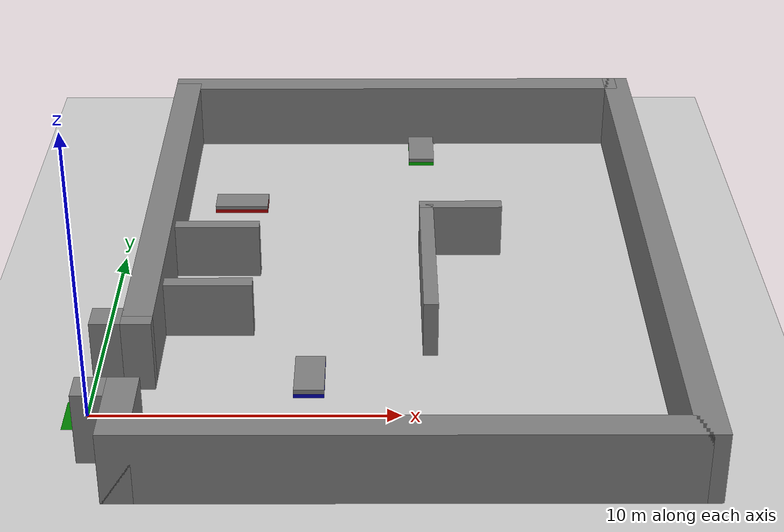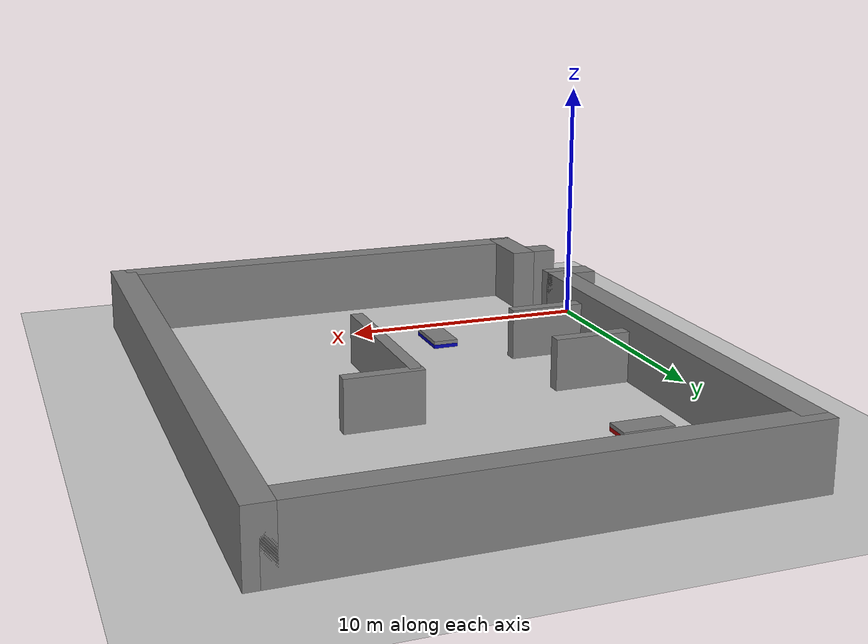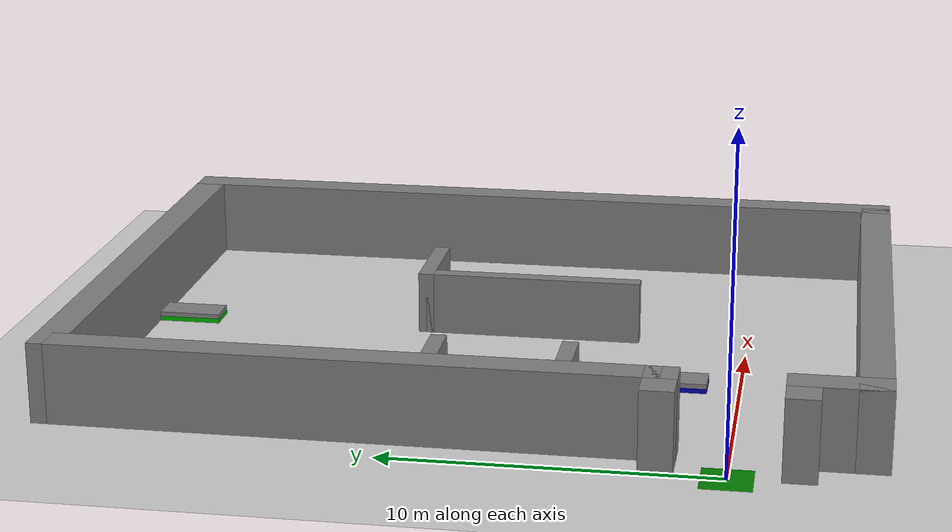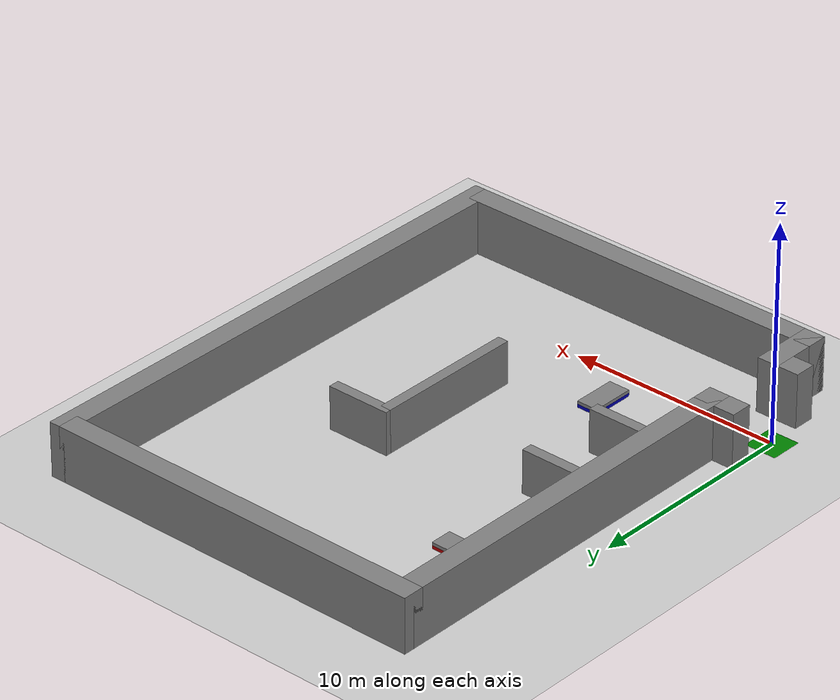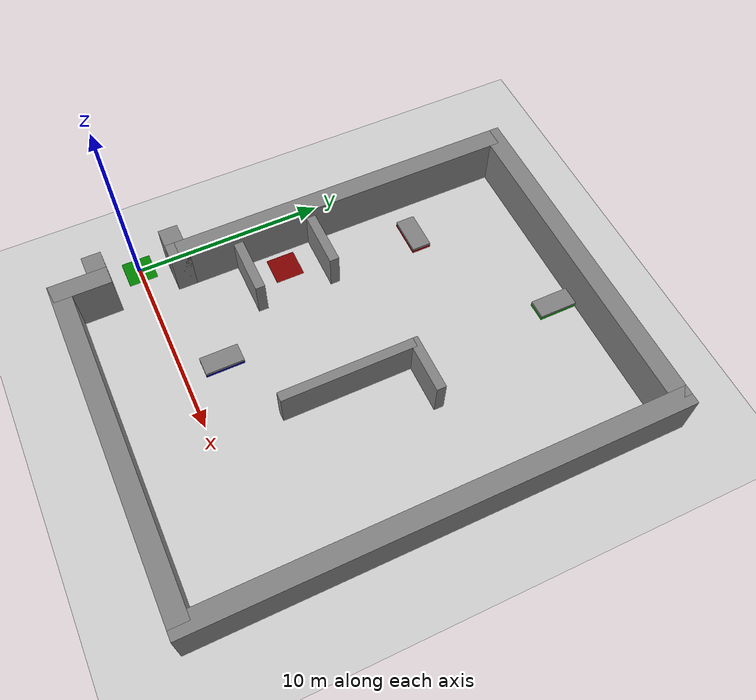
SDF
<sdf version='1.10'>
  <world name='empty'>
    <physics name='1ms' type='ignored'>
      <max_step_size>0.001</max_step_size>
      <real_time_factor>1</real_time_factor>
      <real_time_update_rate>1000</real_time_update_rate>
    </physics>
    <plugin name='gz::sim::systems::Physics' filename='gz-sim-physics-system'/>
    <plugin name='gz::sim::systems::UserCommands' filename='gz-sim-user-commands-system'/>
    <plugin name='gz::sim::systems::SceneBroadcaster' filename='gz-sim-scene-broadcaster-system'/>
    <plugin name='gz::sim::systems::Contact' filename='gz-sim-contact-system'/>
    <gravity>0 0 -9.8000000000000007</gravity>
    <magnetic_field>5.5644999999999998e-06 2.2875799999999999e-05 -4.2388400000000002e-05</magnetic_field>
    <atmosphere type='adiabatic'/>
    <scene>
      <ambient>0.400000006 0.400000006 0.400000006 1</ambient>
      <background>0.699999988 0.699999988 0.699999988 1</background>
      <shadows>false</shadows>
    </scene>
    <model name='ground_plane'>
      <static>true</static>
      <link name='link'>
        <collision name='collision'>
          <geometry>
            <plane>
              <normal>0 0 1</normal>
              <size>70 70</size>
            </plane>
          </geometry>
          <surface>
            <friction>
              <ode/>
            </friction>
            <bounce/>
            <contact/>
          </surface>
        </collision>
        <visual name='visual'>
          <geometry>
            <plane>
              <normal>0 0 1</normal>
              <size>70 70</size>
            </plane>
          </geometry>
          <material>
            <ambient>0.800000012 0.800000012 0.800000012 1</ambient>
            <diffuse>0.800000012 0.800000012 0.800000012 1</diffuse>
            <specular>0.800000012 0.800000012 0.800000012 1</specular>
          </material>
        </visual>
        <pose>0 0 0 0 0 0</pose>
        <inertial>
          <pose>0 0 0 0 0 0</pose>
          <mass>1</mass>
          <inertia>
            <ixx>1</ixx>
            <ixy>0</ixy>
            <ixz>0</ixz>
            <iyy>1</iyy>
            <iyz>0</iyz>
            <izz>1</izz>
          </inertia>
        </inertial>
        <enable_wind>false</enable_wind>
      </link>
      <pose>0 0 0 0 0 0</pose>
      <self_collide>false</self_collide>
    </model>
    <light name='sun' type='directional'>
      <pose>0 0 10 0 0 0</pose>
      <cast_shadows>false</cast_shadows>
      <intensity>1</intensity>
      <direction>-0.5 0.10000000000000001 -0.90000000000000002</direction>
      <diffuse>0.800000012 0.800000012 0.800000012 1</diffuse>
      <specular>0.200000003 0.200000003 0.200000003 1</specular>
      <attenuation>
        <range>1000</range>
        <linear>0.01</linear>
        <constant>0.90000000000000002</constant>
        <quadratic>0.001</quadratic>
      </attenuation>
      <spot>
        <inner_angle>0</inner_angle>
        <outer_angle>0</outer_angle>
        <falloff>0</falloff>
      </spot>
    </light>

    <model name='pick_table_top'>
      <static>true</static>
      <pose>7 2 0.225 0 0 0</pose> <link name='link'>
        <collision name='collision'>
          <geometry>
            <box>
              <size>1 2 0.15</size>
            </box>
          </geometry>
        </collision>
        <visual name='visual'>
          <geometry>
            <box>
              <size>1 2 0.15</size>
            </box>
          </geometry>
          <material>
            <ambient>0.8 0.0 0.0 1.0</ambient>

            <diffuse>0.5 0.5 0.5 1.0</diffuse>

            <specular>0.5 0.5 0.5 1.0</specular>
          </material>
        </visual>
      </link>
    </model>

    <model name='start_point'>
      <static>true</static>
      <pose>0 0 0.001 0 0 0</pose> <link name='link'>
        <visual name='visual'>
          <geometry>
            <box>
              <size>1.5 1.5 0</size>
            </box>
          </geometry>
          <material>
            <ambient>0.8 0.0 0.0 1.0</ambient>

            <diffuse>0.0 0.5 0.0 1.0</diffuse>

            <specular>0.5 0.5 0.5 1.0</specular>
          </material>
        </visual>
      </link>
    </model>

    <model name='finish_point'>
      <static>true</static>
      <pose>3 7 0.001 0 0 0</pose> <link name='link'>
        <visual name='visual'>
          <geometry>
            <box>
              <size>1.5 1.5 0</size>
            </box>
          </geometry>
          <material>
            <ambient>0.8 0.0 0.0 1.0</ambient>

            <diffuse>0.5 0.0 0.0 1.0</diffuse>

            <specular>0.5 0.5 0.5 1.0</specular>
          </material>
        </visual>
      </link>
    </model>

    <model name='pick_table_bot'>
      <static>true</static>
      <pose>7 2 0.075 0 0 0</pose> <link name='link'>
        <collision name='collision'>
          <geometry>
            <box>
              <size>1 2 0.15</size>
            </box>
          </geometry>
        </collision>
        <visual name='visual'>
          <geometry>
            <box>
              <size>1 2 0.15</size>
            </box>
          </geometry>
          <material>
            <ambient>0.8 0.0 0.0 1.0</ambient>

            <diffuse>0.0 0.0 0.7 1.0</diffuse>

            <specular>0.5 0.5 0.5 1.0</specular>
          </material>
        </visual>
      </link>
    </model>

    <model name='place_table_top'>
      <static>true</static>
      <pose>4 14 0.225 0 0 1.57</pose> <link name='link'>
        <collision name='collision'>
          <geometry>
            <box>
              <size>1 2 0.15</size>
            </box>
          </geometry>
        </collision>
        <visual name='visual'>
          <geometry>
            <box>
              <size>1 2 0.15</size>
            </box>
          </geometry>
          <material>
            <ambient>0.8 0.0 0.0 1.0</ambient>

            <diffuse>0.5 0.5 0.5 1.0</diffuse>

            <specular>0.5 0.5 0.5 1.0</specular>
          </material>
        </visual>
      </link>
    </model>

    <model name='place_table_bot'>
      <static>true</static>
      <pose>4 14 0.075 0 0 1.57</pose> <link name='link'>
        <collision name='collision'>
          <geometry>
            <box>
              <size>1 2 0.15</size>
            </box>
          </geometry>
        </collision>
        <visual name='visual'>
          <geometry>
            <box>
              <size>1 2 0.15</size>
            </box>
          </geometry>
          <material>
            <ambient>0.8 0.0 0.0 1.0</ambient>

            <diffuse>0.7 0.0 0.0 1.0</diffuse>

            <specular>0.5 0.5 0.5 1.0</specular>
          </material>
        </visual>
      </link>
    </model>

    <model name='precision_table_top'>
      <static>true</static>
      <pose>11 18.5 0.225 0 0 0</pose> <link name='link'>
        <collision name='collision'>
          <geometry>
            <box>
              <size>1 2 0.15</size>
            </box>
          </geometry>
        </collision>
        <visual name='visual'>
          <geometry>
            <box>
              <size>1 2 0.15</size>
            </box>
          </geometry>
          <material>
            <ambient>0.8 0.0 0.0 1.0</ambient>

            <diffuse>0.5 0.5 0.5 1.0</diffuse>

            <specular>0.5 0.5 0.5 1.0</specular>
          </material>
        </visual>
      </link>
    </model>

    <model name='precision_table_bot'>
      <static>true</static>
      <pose>11 18.5 0.075 0 0 0</pose> <link name='link'>
        <collision name='collision'>
          <geometry>
            <box>
              <size>1 2 0.15</size>
            </box>
          </geometry>
        </collision>
        <visual name='visual'>
          <geometry>
            <box>
              <size>1 2 0.15</size>
            </box>
          </geometry>
          <material>
            <ambient>0.8 0.0 0.0 1.0</ambient>

            <diffuse>0.0 0.7 0.0 1.0</diffuse>

            <specular>0.5 0.5 0.5 1.0</specular>
          </material>
        </visual>
      </link>
    </model>

    <model name='wall_1'>
      <static>true</static>
      <pose>19 8 1.25 0 0 0</pose> <link name='link'>
        <collision name='collision'>
          <geometry>
            <box>
              <size>1 25 2.5</size>
            </box>
          </geometry>
        </collision>
        <visual name='visual'>
          <geometry>
            <box>
              <size>1 25 2.5</size>
            </box>
          </geometry>
          <material>
            <ambient>0.8 0.0 0.0 1.0</ambient>

            <diffuse>0.5 0.5 0.5 1.0</diffuse>

            <specular>0.5 0.5 0.5 1.0</specular>
          </material>
        </visual>
      </link>
    </model>

    <model name='wall_2'>
      <static>true</static>
      <pose>1.5 11 1.25 0 0 0</pose> <link name='link'>
        <collision name='collision'>
          <geometry>
            <box>
              <size>2 18 2.5</size>
            </box>
          </geometry>
        </collision>
        <visual name='visual'>
          <geometry>
            <box>
              <size>1 18 2.5</size>
            </box>
          </geometry>
          <material>
            <ambient>0.8 0.0 0.0 1.0</ambient>

            <diffuse>0.5 0.5 0.5 1.0</diffuse>

            <specular>0.5 0.5 0.5 1.0</specular>
          </material>
        </visual>
      </link>
    </model>

    <model name='wall_3'>
      <static>true</static>
      <pose>10 -4 1.25 0 0 0</pose> <link name='link'>
        <collision name='collision'>
          <geometry>
            <box>
              <size>18 1 2.5</size>
            </box>
          </geometry>
        </collision>
        <visual name='visual'>
          <geometry>
            <box>
              <size>18 1 2.5</size>
            </box>
          </geometry>
          <material>
            <ambient>0.8 0.0 0.0 1.0</ambient>

            <diffuse>0.5 0.5 0.5 1.0</diffuse>

            <specular>0.5 0.5 0.5 1.0</specular>
          </material>
        </visual>
      </link>
    </model>

    <model name='wall_4'>
      <static>true</static>
      <pose>10 20 1.25 0 0 0</pose> <link name='link'>
        <collision name='collision'>
          <geometry>
            <box>
              <size>18 1 2.5</size>
            </box>
          </geometry>
        </collision>
        <visual name='visual'>
          <geometry>
            <box>
              <size>18 1 2.5</size>
            </box>
          </geometry>
          <material>
            <ambient>0.8 0.0 0.0 1.0</ambient>

            <diffuse>0.5 0.5 0.5 1.0</diffuse>

            <specular>0.5 0.5 0.5 1.0</specular>
          </material>
        </visual>
      </link>
    </model>

    <model name='wall_5'>
      <static>true</static>
      <pose>1.5 -3 1.25 0 0 0</pose> <link name='link'>
        <collision name='collision'>
          <geometry>
            <box>
              <size>1 3 2.5</size>
            </box>
          </geometry>
        </collision>
        <visual name='visual'>
          <geometry>
            <box>
              <size>1 3 2.5</size>
            </box>
          </geometry>
          <material>
            <ambient>0.8 0.0 0.0 1.0</ambient>

            <diffuse>0.5 0.5 0.5 1.0</diffuse>

            <specular>0.5 0.5 0.5 1.0</specular>
          </material>
        </visual>
      </link>
    </model>

    <model name='wall_6'>
      <static>true</static>
      <pose>1.5 2 1.25 0 0 0</pose> <link name='link'>
        <collision name='collision'>
          <geometry>
            <box>
              <size>1 1 2.5</size>
            </box>
          </geometry>
        </collision>
        <visual name='visual'>
          <geometry>
            <box>
              <size>1 1 2.5</size>
            </box>
          </geometry>
          <material>
            <ambient>0.8 0.0 0.0 1.0</ambient>

            <diffuse>0.5 0.5 0.5 1.0</diffuse>

            <specular>0.5 0.5 0.5 1.0</specular>
          </material>
        </visual>
      </link>
    </model>

    <model name='gate_1'>
      <static>true</static>
      <pose>0.5 2 1.25 0 0 0</pose> <link name='link'>
        <collision name='collision'>
          <geometry>
            <box>
              <size>2 1 2.5</size>
            </box>
          </geometry>
        </collision>
        <visual name='visual'>
          <geometry>
            <box>
              <size>1 1 2.5</size>
            </box>
          </geometry>
          <material>
            <ambient>0.8 0.0 0.0 1.0</ambient>

            <diffuse>0.5 0.5 0.5 1.0</diffuse>

            <specular>0.5 0.5 0.5 1.0</specular>
          </material>
        </visual>
      </link>
    </model>

    <model name='gate_2'>
      <static>true</static>
      <pose>0.5 -2 1.25 0 0 0</pose> <link name='link'>
        <collision name='collision'>
          <geometry>
            <box>
              <size>2 1 2.5</size>
            </box>
          </geometry>
        </collision>
        <visual name='visual'>
          <geometry>
            <box>
              <size>1 1 2.5</size>
            </box>
          </geometry>
          <material>
            <ambient>0.8 0.0 0.0 1.0</ambient>

            <diffuse>0.5 0.5 0.5 1.0</diffuse>

            <specular>0.5 0.5 0.5 1.0</specular>
          </material>
        </visual>
      </link>
    </model>

    <model name='obstacle_1'>
      <static>true</static>
      <pose>3.5 5 1 0 0 0</pose> <link name='link'>
        <collision name='collision'>
          <geometry>
            <box>
              <size>3 0.5 2</size>
            </box>
          </geometry>
        </collision>
        <visual name='visual'>
          <geometry>
            <box>
              <size>3 0.5 2</size>
            </box>
          </geometry>
          <material>
            <ambient>0.8 0.0 0.0 1.0</ambient>

            <diffuse>0.5 0.5 0.5 1.0</diffuse>

            <specular>0.5 0.5 0.5 1.0</specular>
          </material>
        </visual>
      </link>
    </model>

    <model name='obstacle_2'>
      <static>true</static>
      <pose>3.5 9 1 0 0 0</pose> <link name='link'>
        <collision name='collision'>
          <geometry>
            <box>
              <size>3 0.5 2</size>
            </box>
          </geometry>
        </collision>
        <visual name='visual'>
          <geometry>
            <box>
              <size>3 0.5 2</size>
            </box>
          </geometry>
          <material>
            <ambient>0.8 0.0 0.0 1.0</ambient>

            <diffuse>0.5 0.5 0.5 1.0</diffuse>

            <specular>0.5 0.5 0.5 1.0</specular>
          </material>
        </visual>
      </link>
    </model>

    <model name='obstacle_3'>
      <static>true</static>
      <pose>11 7 1 0 0 0</pose> <link name='link'>
        <collision name='collision'>
          <geometry>
            <box>
              <size>0.5 7 2</size>
            </box>
          </geometry>
        </collision>
        <visual name='visual'>
          <geometry>
            <box>
              <size>0.5 7 2</size>
            </box>
          </geometry>
          <material>
            <ambient>0.8 0.0 0.0 1.0</ambient>

            <diffuse>0.5 0.5 0.5 1.0</diffuse>

            <specular>0.5 0.5 0.5 1.0</specular>
          </material>
        </visual>
      </link>
    </model>

    <model name='obstacle_4'>
      <static>true</static>
      <pose>12.25 10.5 1 0 0 0</pose> <link name='link'>
        <collision name='collision'>
          <geometry>
            <box>
              <size>0.5 6 2</size>
            </box>
          </geometry>
        </collision>
        <visual name='visual'>
          <geometry>
            <box>
              <size>3 0.5 2</size>
            </box>
          </geometry>
          <material>
            <ambient>0.8 0.0 0.0 1.0</ambient>

            <diffuse>0.5 0.5 0.5 1.0</diffuse>

            <specular>0.5 0.5 0.5 1.0</specular>
          </material>
        </visual>
      </link>
    </model>

  </world>
</sdf>
